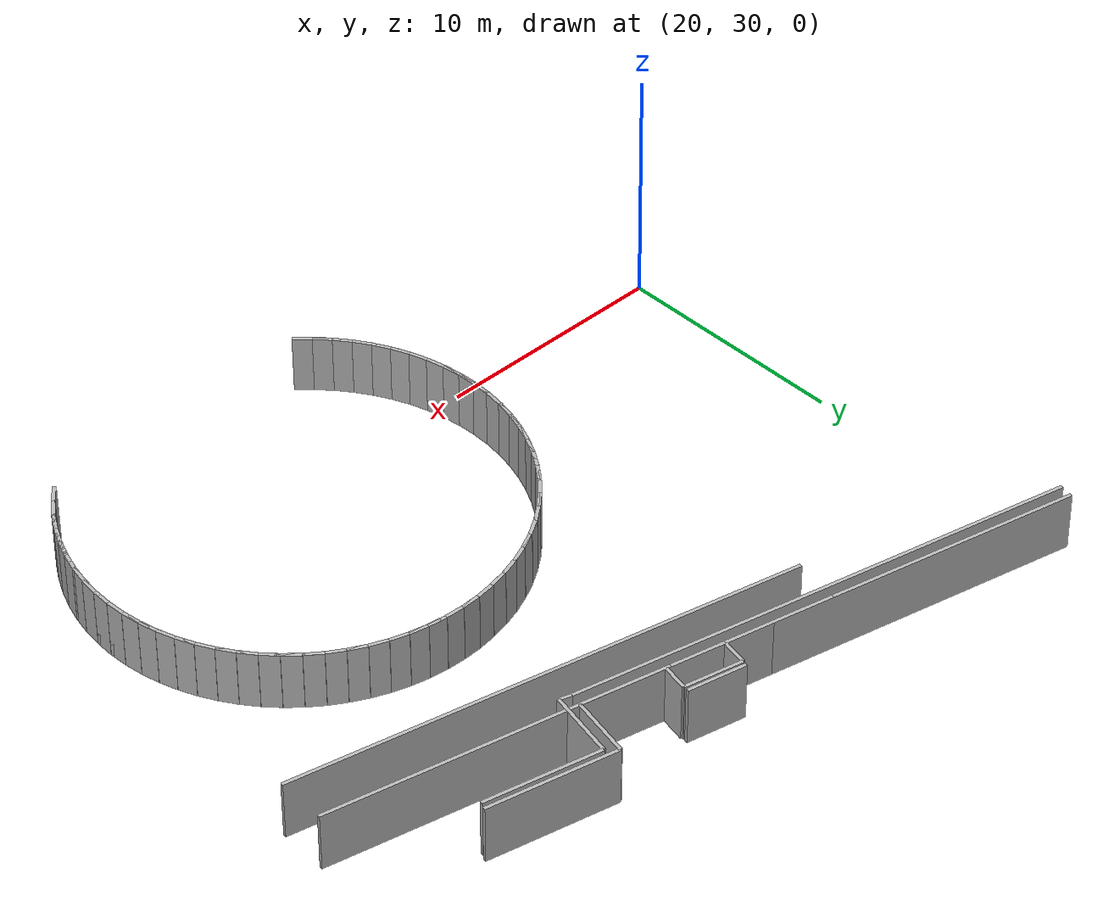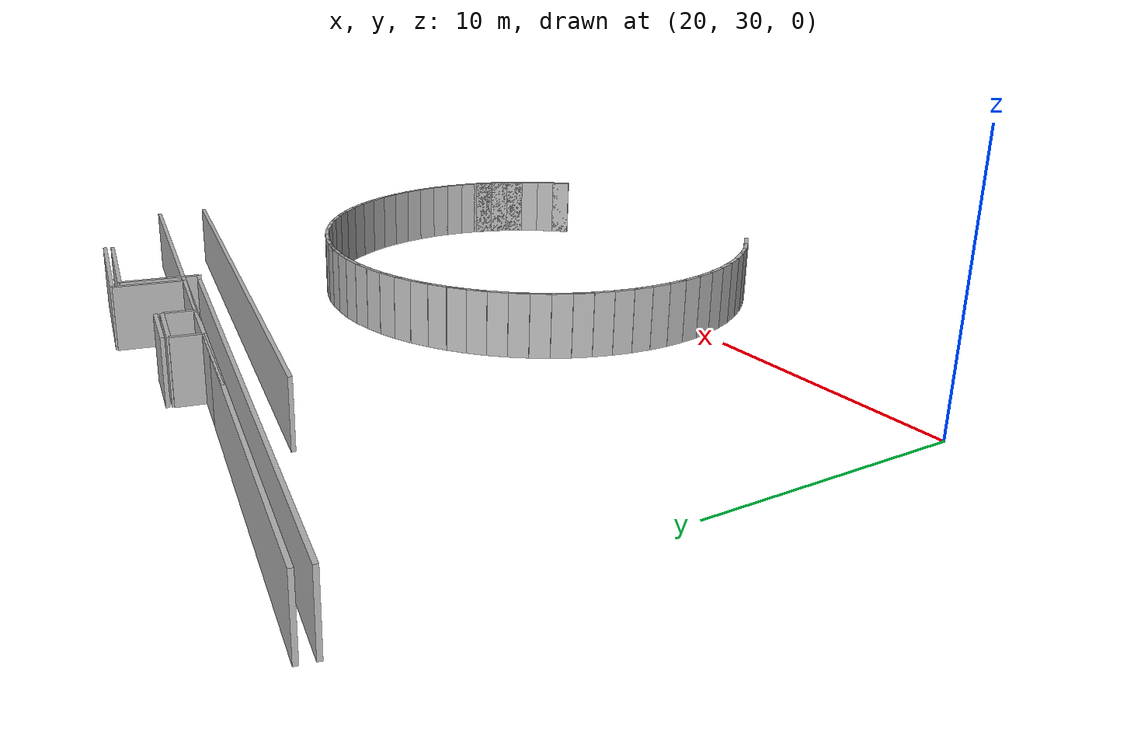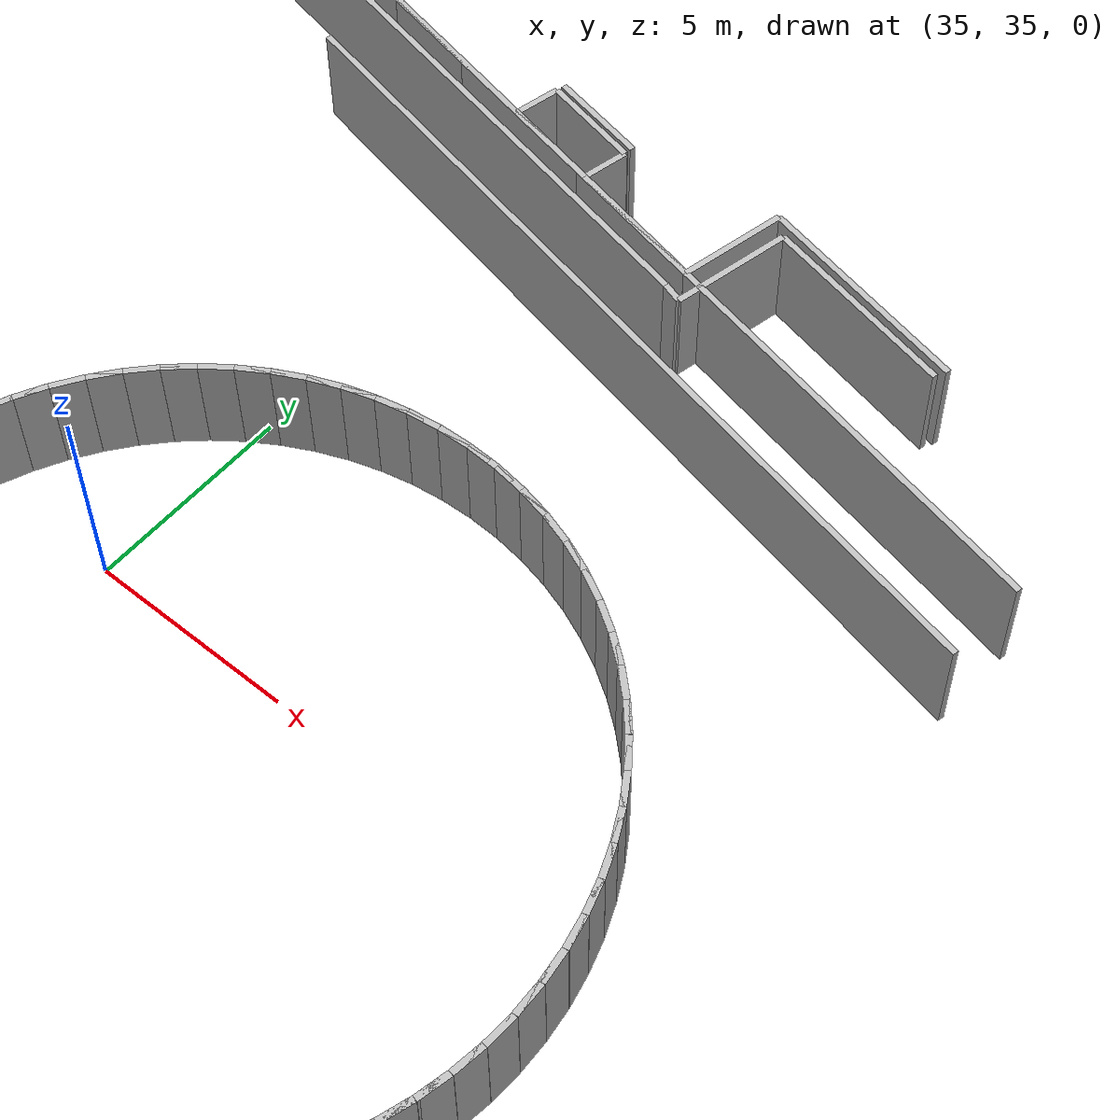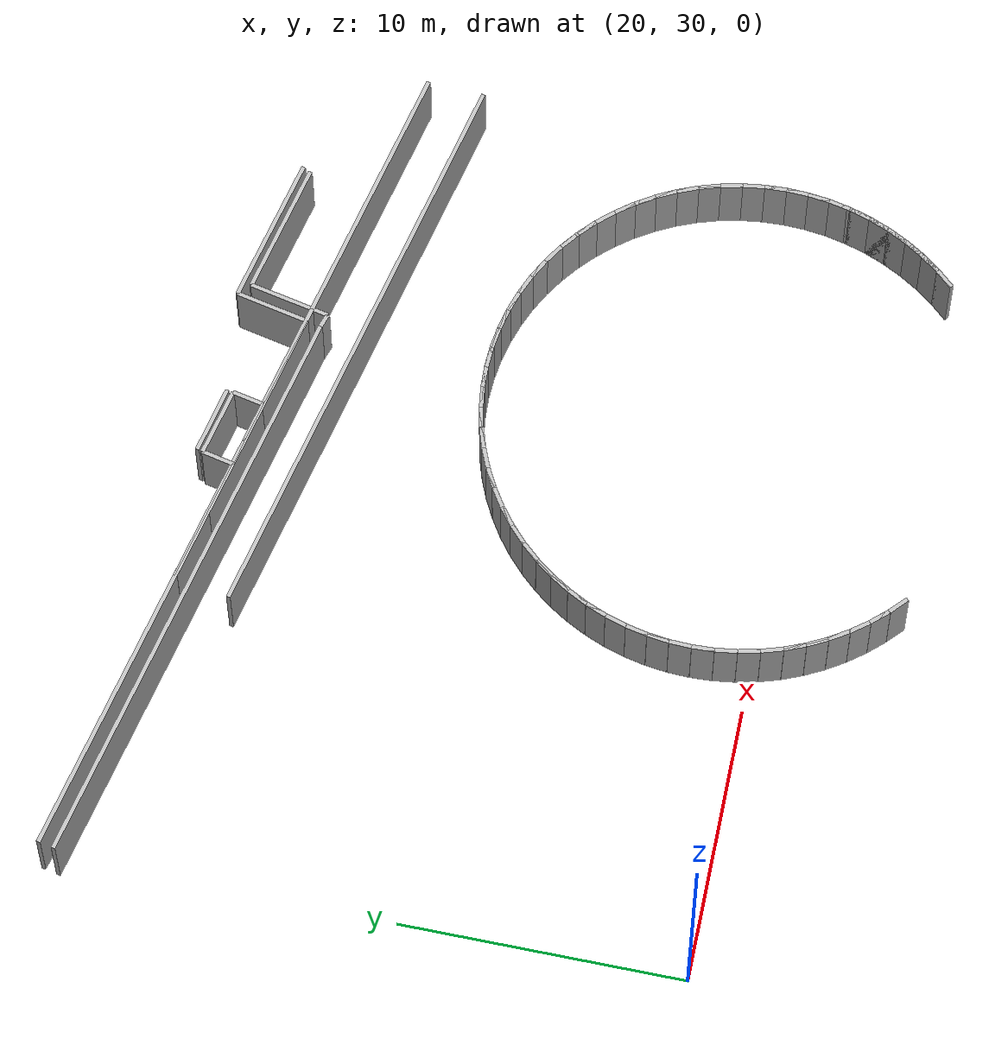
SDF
<sdf version="1.6">
 <model name="sps_2304">
  <static>1</static>
  <allow_auto_disable>0</allow_auto_disable>
  <link name="Wall554">
   <collision name="collision"><geometry><box><size>3.76873 0.15 2.5</size></box></geometry></collision>
   <visual name="visual">
    <geometry><box><size>3.76873 0.15 2.5</size></box></geometry>
    <transparency>0.0</transparency>
   </visual>
   <pose>38.6489 47.998 1.25 0 -0 2.92741</pose>
  </link>
  <link name="Wall557">
   <collision name="collision"><geometry><box><size>21.4794 0.15 2.5</size></box></geometry></collision>
   <visual name="visual">
    <geometry><box><size>21.4794 0.15 2.5</size></box></geometry>
    <transparency>0.0</transparency>
   </visual>
   <pose>40.1071 45.6379 1.25 0 0 -0.213752</pose>
  </link>
  <link name="Wall848">
   <collision name="collision"><geometry><box><size>21.4006 0.15 2.5</size></box></geometry></collision>
   <visual name="visual">
    <geometry><box><size>21.4006 0.15 2.5</size></box></geometry>
    <transparency>0.0</transparency>
   </visual>
   <pose>29.9182 49.3349 1.25 0 0 -0.214228</pose>
  </link>
  <link name="Wall851">
   <collision name="collision"><geometry><box><size>9.96599 0.15 2.5</size></box></geometry></collision>
   <visual name="visual">
    <geometry><box><size>9.96599 0.15 2.5</size></box></geometry>
    <transparency>0.0</transparency>
   </visual>
   <pose>45.8498 46.4379 1.25 0 0 -0.213747</pose>
  </link>
  <link name="Wall1164">
   <collision name="collision"><geometry><box><size>0.502882 0.15 2.5</size></box></geometry></collision>
   <visual name="visual">
    <geometry><box><size>0.502882 0.15 2.5</size></box></geometry>
    <transparency>0.0</transparency>
   </visual>
   <pose>40.613 46.9823 1.25 0 -0 2.82706</pose>
  </link>
  <link name="Wall1165">
   <collision name="collision"><geometry><box><size>2.95052 0.15 2.5</size></box></geometry></collision>
   <visual name="visual">
    <geometry><box><size>2.95052 0.15 2.5</size></box></geometry>
    <transparency>0.0</transparency>
   </visual>
   <pose>41.1655 48.3461 1.25 0 0 -1.78485</pose>
  </link>
  <link name="Wall1166">
   <collision name="collision"><geometry><box><size>5.50803 0.15 2.5</size></box></geometry></collision>
   <visual name="visual">
    <geometry><box><size>5.50803 0.15 2.5</size></box></geometry>
    <transparency>0.0</transparency>
   </visual>
   <pose>43.745 49.601 1.25 0 -0 2.92728</pose>
  </link>
  <link name="Wall1455">
   <collision name="collision"><geometry><box><size>11.205 0.15 2.5</size></box></geometry></collision>
   <visual name="visual">
    <geometry><box><size>11.205 0.15 2.5</size></box></geometry>
    <transparency>0.0</transparency>
   </visual>
   <pose>35.5052 48.6834 1.25 0 0 -0.213762</pose>
  </link>
  <link name="Wall1771">
   <collision name="collision"><geometry><box><size>4.9279 0.15 2.5</size></box></geometry></collision>
   <visual name="visual">
    <geometry><box><size>4.9279 0.15 2.5</size></box></geometry>
    <transparency>0.0</transparency>
   </visual>
   <pose>43.8863 49.2633 1.25 0 -0 2.92713</pose>
  </link>
  <link name="Wall2399">
   <collision name="collision"><geometry><box><size>2.6499 0.15 2.5</size></box></geometry></collision>
   <visual name="visual">
    <geometry><box><size>2.6499 0.15 2.5</size></box></geometry>
    <transparency>0.0</transparency>
   </visual>
   <pose>40.7721 48.8921 1.25 0 0 -1.78519</pose>
  </link>
  <link name="Wall2913">
   <collision name="collision"><geometry><box><size>2.6499 0.15 2.5</size></box></geometry></collision>
   <visual name="visual">
    <geometry><box><size>2.6499 0.15 2.5</size></box></geometry>
    <transparency>0.0</transparency>
   </visual>
   <pose>40.7721 48.8921 1.25 0 0 -1.78519</pose>
  </link>
  <link name="Wall2914">
   <collision name="collision"><geometry><box><size>21.4 0.15 2.5</size></box></geometry></collision>
   <visual name="visual">
    <geometry><box><size>21.4 0.15 2.5</size></box></geometry>
    <transparency>0.0</transparency>
   </visual>
   <pose>30.0348 49.8721 1.25 0 -0 2.92738</pose>
  </link>
  <link name="Wall7907">
   <collision name="collision"><geometry><box><size>21.4794 0.15 2.5</size></box></geometry></collision>
   <visual name="visual">
    <geometry><box><size>21.4794 0.15 2.5</size></box></geometry>
    <transparency>0.0</transparency>
   </visual>
   <pose>40.1071 45.6379 1.25 0 0 -0.213752</pose>
  </link>
  <link name="Wall11289">
   <collision name="collision"><geometry><box><size>0.785219 0.15 2.5</size></box></geometry></collision>
   <visual name="visual">
    <geometry><box><size>0.785219 0.15 2.5</size></box></geometry>
    <transparency>0.0</transparency>
   </visual>
   <pose>45.458 39.1866 1.25 0 0 -0.654819</pose>
  </link>
  <link name="Wall11290">
   <collision name="collision"><geometry><box><size>0.785187 0.15 2.5</size></box></geometry></collision>
   <visual name="visual">
    <geometry><box><size>0.785187 0.15 2.5</size></box></geometry>
    <transparency>0.0</transparency>
   </visual>
   <pose>46.0588 38.6822 1.25 0 0 -0.741962</pose>
  </link>
  <link name="Wall11291">
   <collision name="collision"><geometry><box><size>0.785075 0.15 2.5</size></box></geometry></collision>
   <visual name="visual">
    <geometry><box><size>0.785075 0.15 2.5</size></box></geometry>
    <transparency>0.0</transparency>
   </visual>
   <pose>46.6133 38.1274 1.25 0 0 -0.829336</pose>
  </link>
  <link name="Wall11292">
   <collision name="collision"><geometry><box><size>0.785141 0.15 2.5</size></box></geometry></collision>
   <visual name="visual">
    <geometry><box><size>0.785141 0.15 2.5</size></box></geometry>
    <transparency>0.0</transparency>
   </visual>
   <pose>47.1174 37.5264 1.25 0 0 -0.916489</pose>
  </link>
  <link name="Wall11293">
   <collision name="collision"><geometry><box><size>0.785282 0.15 2.5</size></box></geometry></collision>
   <visual name="visual">
    <geometry><box><size>0.785282 0.15 2.5</size></box></geometry>
    <transparency>0.0</transparency>
   </visual>
   <pose>47.5672 36.8837 1.25 0 0 -1.00383</pose>
  </link>
  <link name="Wall11294">
   <collision name="collision"><geometry><box><size>0.78499 0.15 2.5</size></box></geometry></collision>
   <visual name="visual">
    <geometry><box><size>0.78499 0.15 2.5</size></box></geometry>
    <transparency>0.0</transparency>
   </visual>
   <pose>47.9592 36.2043 1.25 0 0 -1.09115</pose>
  </link>
  <link name="Wall11295">
   <collision name="collision"><geometry><box><size>0.785295 0.15 2.5</size></box></geometry></collision>
   <visual name="visual">
    <geometry><box><size>0.785295 0.15 2.5</size></box></geometry>
    <transparency>0.0</transparency>
   </visual>
   <pose>48.2905 35.4933 1.25 0 0 -1.17832</pose>
  </link>
  <link name="Wall11296">
   <collision name="collision"><geometry><box><size>0.7851 0.15 2.5</size></box></geometry></collision>
   <visual name="visual">
    <geometry><box><size>0.7851 0.15 2.5</size></box></geometry>
    <transparency>0.0</transparency>
   </visual>
   <pose>48.5586 34.7561 1.25 0 0 -1.26569</pose>
  </link>
  <link name="Wall11297">
   <collision name="collision"><geometry><box><size>0.785181 0.15 2.5</size></box></geometry></collision>
   <visual name="visual">
    <geometry><box><size>0.785181 0.15 2.5</size></box></geometry>
    <transparency>0.0</transparency>
   </visual>
   <pose>48.7614 33.9984 1.25 0 0 -1.35282</pose>
  </link>
  <link name="Wall11298">
   <collision name="collision"><geometry><box><size>0.785058 0.15 2.5</size></box></geometry></collision>
   <visual name="visual">
    <geometry><box><size>0.785058 0.15 2.5</size></box></geometry>
    <transparency>0.0</transparency>
   </visual>
   <pose>48.8974 33.2259 1.25 0 0 -1.44028</pose>
  </link>
  <link name="Wall11299">
   <collision name="collision"><geometry><box><size>0.785343 0.15 2.5</size></box></geometry></collision>
   <visual name="visual">
    <geometry><box><size>0.785343 0.15 2.5</size></box></geometry>
    <transparency>0.0</transparency>
   </visual>
   <pose>48.9654 32.4444 1.25 0 0 -1.52749</pose>
  </link>
  <link name="Wall11300">
   <collision name="collision"><geometry><box><size>0.785115 0.15 2.5</size></box></geometry></collision>
   <visual name="visual">
    <geometry><box><size>0.785115 0.15 2.5</size></box></geometry>
    <transparency>0.0</transparency>
   </visual>
   <pose>48.9653 31.6599 1.25 0 0 -1.61458</pose>
  </link>
  <link name="Wall11301">
   <collision name="collision"><geometry><box><size>0.785207 0.15 2.5</size></box></geometry></collision>
   <visual name="visual">
    <geometry><box><size>0.785207 0.15 2.5</size></box></geometry>
    <transparency>0.0</transparency>
   </visual>
   <pose>48.8967 30.8785 1.25 0 0 -1.70215</pose>
  </link>
  <link name="Wall11302">
   <collision name="collision"><geometry><box><size>0.784983 0.15 2.5</size></box></geometry></collision>
   <visual name="visual">
    <geometry><box><size>0.784983 0.15 2.5</size></box></geometry>
    <transparency>0.0</transparency>
   </visual>
   <pose>48.7602 30.1061 1.25 0 0 -1.78907</pose>
  </link>
  <link name="Wall11303">
   <collision name="collision"><geometry><box><size>0.785265 0.15 2.5</size></box></geometry></collision>
   <visual name="visual">
    <geometry><box><size>0.785265 0.15 2.5</size></box></geometry>
    <transparency>0.0</transparency>
   </visual>
   <pose>48.5571 29.3485 1.25 0 0 -1.87657</pose>
  </link>
  <link name="Wall11304">
   <collision name="collision"><geometry><box><size>0.784993 0.15 2.5</size></box></geometry></collision>
   <visual name="visual">
    <geometry><box><size>0.784993 0.15 2.5</size></box></geometry>
    <transparency>0.0</transparency>
   </visual>
   <pose>48.2886 28.6115 1.25 0 0 -1.96376</pose>
  </link>
  <link name="Wall11305">
   <collision name="collision"><geometry><box><size>0.785243 0.15 2.5</size></box></geometry></collision>
   <visual name="visual">
    <geometry><box><size>0.785243 0.15 2.5</size></box></geometry>
    <transparency>0.0</transparency>
   </visual>
   <pose>47.9569 27.9007 1.25 0 0 -2.05106</pose>
  </link>
  <link name="Wall11306">
   <collision name="collision"><geometry><box><size>0.785185 0.15 2.5</size></box></geometry></collision>
   <visual name="visual">
    <geometry><box><size>0.785185 0.15 2.5</size></box></geometry>
    <transparency>0.0</transparency>
   </visual>
   <pose>47.5644 27.2215 1.25 0 0 -2.13857</pose>
  </link>
  <link name="Wall11307">
   <collision name="collision"><geometry><box><size>0.78507 0.15 2.5</size></box></geometry></collision>
   <visual name="visual">
    <geometry><box><size>0.78507 0.15 2.5</size></box></geometry>
    <transparency>0.0</transparency>
   </visual>
   <pose>47.1142 26.5791 1.25 0 0 -2.22537</pose>
  </link>
  <link name="Wall11308">
   <collision name="collision"><geometry><box><size>0.785228 0.15 2.5</size></box></geometry></collision>
   <visual name="visual">
    <geometry><box><size>0.785228 0.15 2.5</size></box></geometry>
    <transparency>0.0</transparency>
   </visual>
   <pose>46.6099 25.9783 1.25 0 0 -2.31282</pose>
  </link>
  <link name="Wall11326">
   <collision name="collision"><geometry><box><size>0.785217 0.15 2.5</size></box></geometry></collision>
   <visual name="visual">
    <geometry><box><size>0.785217 0.15 2.5</size></box></geometry>
    <transparency>0.0</transparency>
   </visual>
   <pose>33.906 25.4273 1.25 0 -0 2.39924</pose>
  </link>
  <link name="Wall11327">
   <collision name="collision"><geometry><box><size>0.785075 0.15 2.5</size></box></geometry></collision>
   <visual name="visual">
    <geometry><box><size>0.785075 0.15 2.5</size></box></geometry>
    <transparency>0.0</transparency>
   </visual>
   <pose>33.3516 25.9822 1.25 0 -0 2.31226</pose>
  </link>
  <link name="Wall11328">
   <collision name="collision"><geometry><box><size>0.785215 0.15 2.5</size></box></geometry></collision>
   <visual name="visual">
    <geometry><box><size>0.785215 0.15 2.5</size></box></geometry>
    <transparency>0.0</transparency>
   </visual>
   <pose>32.8475 26.5832 1.25 0 -0 2.22523</pose>
  </link>
  <link name="Wall11329">
   <collision name="collision"><geometry><box><size>0.785217 0.15 2.5</size></box></geometry></collision>
   <visual name="visual">
    <geometry><box><size>0.785217 0.15 2.5</size></box></geometry>
    <transparency>0.0</transparency>
   </visual>
   <pose>32.3977 27.2259 1.25 0 -0 2.13763</pose>
  </link>
  <link name="Wall11330">
   <collision name="collision"><geometry><box><size>0.785046 0.15 2.5</size></box></geometry></collision>
   <visual name="visual">
    <geometry><box><size>0.785046 0.15 2.5</size></box></geometry>
    <transparency>0.0</transparency>
   </visual>
   <pose>32.0057 27.9053 1.25 0 -0 2.05058</pose>
  </link>
  <link name="Wall11331">
   <collision name="collision"><geometry><box><size>0.785248 0.15 2.5</size></box></geometry></collision>
   <visual name="visual">
    <geometry><box><size>0.785248 0.15 2.5</size></box></geometry>
    <transparency>0.0</transparency>
   </visual>
   <pose>31.6744 28.6163 1.25 0 -0 1.96312</pose>
  </link>
  <link name="Wall11332">
   <collision name="collision"><geometry><box><size>0.785082 0.15 2.5</size></box></geometry></collision>
   <visual name="visual">
    <geometry><box><size>0.785082 0.15 2.5</size></box></geometry>
    <transparency>0.0</transparency>
   </visual>
   <pose>31.4064 29.3535 1.25 0 -0 1.87583</pose>
  </link>
  <link name="Wall11333">
   <collision name="collision"><geometry><box><size>0.785181 0.15 2.5</size></box></geometry></collision>
   <visual name="visual">
    <geometry><box><size>0.785181 0.15 2.5</size></box></geometry>
    <transparency>0.0</transparency>
   </visual>
   <pose>31.2036 30.1112 1.25 0 -0 1.78877</pose>
  </link>
  <link name="Wall11334">
   <collision name="collision"><geometry><box><size>0.785066 0.15 2.5</size></box></geometry></collision>
   <visual name="visual">
    <geometry><box><size>0.785066 0.15 2.5</size></box></geometry>
    <transparency>0.0</transparency>
   </visual>
   <pose>31.0676 30.8837 1.25 0 -0 1.70139</pose>
  </link>
  <link name="Wall11335">
   <collision name="collision"><geometry><box><size>0.785099 0.15 2.5</size></box></geometry></collision>
   <visual name="visual">
    <geometry><box><size>0.785099 0.15 2.5</size></box></geometry>
    <transparency>0.0</transparency>
   </visual>
   <pose>30.9994 31.6651 1.25 0 -0 1.61411</pose>
  </link>
  <link name="Wall11336">
   <collision name="collision"><geometry><box><size>0.785362 0.15 2.5</size></box></geometry></collision>
   <visual name="visual">
    <geometry><box><size>0.785362 0.15 2.5</size></box></geometry>
    <transparency>0.0</transparency>
   </visual>
   <pose>30.9997 32.4496 1.25 0 -0 1.52695</pose>
  </link>
  <link name="Wall11337">
   <collision name="collision"><geometry><box><size>0.784957 0.15 2.5</size></box></geometry></collision>
   <visual name="visual">
    <geometry><box><size>0.784957 0.15 2.5</size></box></geometry>
    <transparency>0.0</transparency>
   </visual>
   <pose>31.0683 33.231 1.25 0 -0 1.43948</pose>
  </link>
  <link name="Wall11338">
   <collision name="collision"><geometry><box><size>0.785221 0.15 2.5</size></box></geometry></collision>
   <visual name="visual">
    <geometry><box><size>0.785221 0.15 2.5</size></box></geometry>
    <transparency>0.0</transparency>
   </visual>
   <pose>31.2046 34.0034 1.25 0 -0 1.35259</pose>
  </link>
  <link name="Wall11339">
   <collision name="collision"><geometry><box><size>0.785284 0.15 2.5</size></box></geometry></collision>
   <visual name="visual">
    <geometry><box><size>0.785284 0.15 2.5</size></box></geometry>
    <transparency>0.0</transparency>
   </visual>
   <pose>31.4079 34.7611 1.25 0 -0 1.26495</pose>
  </link>
  <link name="Wall11340">
   <collision name="collision"><geometry><box><size>0.784993 0.15 2.5</size></box></geometry></collision>
   <visual name="visual">
    <geometry><box><size>0.784993 0.15 2.5</size></box></geometry>
    <transparency>0.0</transparency>
   </visual>
   <pose>31.6764 35.4981 1.25 0 -0 1.17783</pose>
  </link>
  <link name="Wall11341">
   <collision name="collision"><geometry><box><size>0.785243 0.15 2.5</size></box></geometry></collision>
   <visual name="visual">
    <geometry><box><size>0.785243 0.15 2.5</size></box></geometry>
    <transparency>0.0</transparency>
   </visual>
   <pose>32.0081 36.2089 1.25 0 -0 1.09053</pose>
  </link>
  <link name="Wall11342">
   <collision name="collision"><geometry><box><size>0.785053 0.15 2.5</size></box></geometry></collision>
   <visual name="visual">
    <geometry><box><size>0.785053 0.15 2.5</size></box></geometry>
    <transparency>0.0</transparency>
   </visual>
   <pose>32.4005 36.8881 1.25 0 -0 1.00328</pose>
  </link>
  <link name="Wall11343">
   <collision name="collision"><geometry><box><size>0.785219 0.15 2.5</size></box></geometry></collision>
   <visual name="visual">
    <geometry><box><size>0.785219 0.15 2.5</size></box></geometry>
    <transparency>0.0</transparency>
   </visual>
   <pose>32.8506 37.5305 1.25 0 -0 0.915977</pose>
  </link>
  <link name="Wall11344">
   <collision name="collision"><geometry><box><size>0.785187 0.15 2.5</size></box></geometry></collision>
   <visual name="visual">
    <geometry><box><size>0.785187 0.15 2.5</size></box></geometry>
    <transparency>0.0</transparency>
   </visual>
   <pose>33.355 38.1313 1.25 0 -0 0.828835</pose>
  </link>
  <link name="Wall11345">
   <collision name="collision"><geometry><box><size>0.785075 0.15 2.5</size></box></geometry></collision>
   <visual name="visual">
    <geometry><box><size>0.785075 0.15 2.5</size></box></geometry>
    <transparency>0.0</transparency>
   </visual>
   <pose>33.9098 38.6858 1.25 0 -0 0.74146</pose>
  </link>
  <link name="Wall11346">
   <collision name="collision"><geometry><box><size>0.785104 0.15 2.5</size></box></geometry></collision>
   <visual name="visual">
    <geometry><box><size>0.785104 0.15 2.5</size></box></geometry>
    <transparency>0.0</transparency>
   </visual>
   <pose>34.5107 39.1898 1.25 0 -0 0.654245</pose>
  </link>
  <link name="Wall11347">
   <collision name="collision"><geometry><box><size>0.785217 0.15 2.5</size></box></geometry></collision>
   <visual name="visual">
    <geometry><box><size>0.785217 0.15 2.5</size></box></geometry>
    <transparency>0.0</transparency>
   </visual>
   <pose>35.1534 39.6395 1.25 0 -0 0.566831</pose>
  </link>
  <link name="Wall11348">
   <collision name="collision"><geometry><box><size>0.785237 0.15 2.5</size></box></geometry></collision>
   <visual name="visual">
    <geometry><box><size>0.785237 0.15 2.5</size></box></geometry>
    <transparency>0.0</transparency>
   </visual>
   <pose>35.8329 40.0315 1.25 0 -0 0.479743</pose>
  </link>
  <link name="Wall11349">
   <collision name="collision"><geometry><box><size>0.785125 0.15 2.5</size></box></geometry></collision>
   <visual name="visual">
    <geometry><box><size>0.785125 0.15 2.5</size></box></geometry>
    <transparency>0.0</transparency>
   </visual>
   <pose>36.5439 40.3629 1.25 0 -0 0.392561</pose>
  </link>
  <link name="Wall11350">
   <collision name="collision"><geometry><box><size>0.7851 0.15 2.5</size></box></geometry></collision>
   <visual name="visual">
    <geometry><box><size>0.7851 0.15 2.5</size></box></geometry>
    <transparency>0.0</transparency>
   </visual>
   <pose>37.2811 40.631 1.25 0 -0 0.305106</pose>
  </link>
  <link name="Wall11351">
   <collision name="collision"><geometry><box><size>0.785129 0.15 2.5</size></box></geometry></collision>
   <visual name="visual">
    <geometry><box><size>0.785129 0.15 2.5</size></box></geometry>
    <transparency>0.0</transparency>
   </visual>
   <pose>38.0388 40.8337 1.25 0 -0 0.217674</pose>
  </link>
  <link name="Wall11352">
   <collision name="collision"><geometry><box><size>0.785272 0.15 2.5</size></box></geometry></collision>
   <visual name="visual">
    <geometry><box><size>0.785272 0.15 2.5</size></box></geometry>
    <transparency>0.0</transparency>
   </visual>
   <pose>38.8114 40.9697 1.25 0 -0 0.130795</pose>
  </link>
  <link name="Wall11353">
   <collision name="collision"><geometry><box><size>0.78516 0.15 2.5</size></box></geometry></collision>
   <visual name="visual">
    <geometry><box><size>0.78516 0.15 2.5</size></box></geometry>
    <transparency>0.0</transparency>
   </visual>
   <pose>39.5929 41.0379 1.25 0 -0 0.0433125</pose>
  </link>
  <link name="Wall11354">
   <collision name="collision"><geometry><box><size>0.785126 0.15 2.5</size></box></geometry></collision>
   <visual name="visual">
    <geometry><box><size>0.785126 0.15 2.5</size></box></geometry>
    <transparency>0.0</transparency>
   </visual>
   <pose>40.3773 41.0376 1.25 0 0 -0.0440925</pose>
  </link>
  <link name="Wall11355">
   <collision name="collision"><geometry><box><size>0.785175 0.15 2.5</size></box></geometry></collision>
   <visual name="visual">
    <geometry><box><size>0.785175 0.15 2.5</size></box></geometry>
    <transparency>0.0</transparency>
   </visual>
   <pose>41.1587 40.969 1.25 0 0 -0.131046</pose>
  </link>
  <link name="Wall11356">
   <collision name="collision"><geometry><box><size>0.785022 0.15 2.5</size></box></geometry></collision>
   <visual name="visual">
    <geometry><box><size>0.785022 0.15 2.5</size></box></geometry>
    <transparency>0.0</transparency>
   </visual>
   <pose>41.9311 40.8326 1.25 0 0 -0.2185</pose>
  </link>
  <link name="Wall11357">
   <collision name="collision"><geometry><box><size>0.785265 0.15 2.5</size></box></geometry></collision>
   <visual name="visual">
    <geometry><box><size>0.785265 0.15 2.5</size></box></geometry>
    <transparency>0.0</transparency>
   </visual>
   <pose>42.6887 40.6293 1.25 0 0 -0.305774</pose>
  </link>
  <link name="Wall11358">
   <collision name="collision"><geometry><box><size>0.785017 0.15 2.5</size></box></geometry></collision>
   <visual name="visual">
    <geometry><box><size>0.785017 0.15 2.5</size></box></geometry>
    <transparency>0.0</transparency>
   </visual>
   <pose>43.4257 40.3608 1.25 0 0 -0.393039</pose>
  </link>
  <link name="Wall11359">
   <collision name="collision"><geometry><box><size>0.785243 0.15 2.5</size></box></geometry></collision>
   <visual name="visual">
    <geometry><box><size>0.785243 0.15 2.5</size></box></geometry>
    <transparency>0.0</transparency>
   </visual>
   <pose>44.1364 40.0291 1.25 0 0 -0.480264</pose>
  </link>
  <link name="Wall13109">
   <collision name="collision"><geometry><box><size>5.50803 0.15 2.5</size></box></geometry></collision>
   <visual name="visual">
    <geometry><box><size>5.50803 0.15 2.5</size></box></geometry>
    <transparency>0.0</transparency>
   </visual>
   <pose>43.745 49.601 1.25 0 -0 2.92728</pose>
  </link>
  <link name="Wall24100">
   <collision name="collision"><geometry><box><size>2.50015 0.15 2.5</size></box></geometry></collision>
   <visual name="visual">
    <geometry><box><size>2.50015 0.15 2.5</size></box></geometry>
    <transparency>0.0</transparency>
   </visual>
   <pose>35.7822 48.6233 1.25 0 0 -0.21377</pose>
  </link>
  <link name="Wall24101">
   <collision name="collision"><geometry><box><size>1.15009 0.15 2.5</size></box></geometry></collision>
   <visual name="visual">
    <geometry><box><size>1.15009 0.15 2.5</size></box></geometry>
    <transparency>0.0</transparency>
   </visual>
   <pose>37.1258 48.9201 1.25 0 -0 1.35722</pose>
  </link>
  <link name="Wall24102">
   <collision name="collision"><geometry><box><size>2.50009 0.15 2.5</size></box></geometry></collision>
   <visual name="visual">
    <geometry><box><size>2.50009 0.15 2.5</size></box></geometry>
    <transparency>0.0</transparency>
   </visual>
   <pose>36.0261 49.7473 1.25 0 -0 2.92782</pose>
  </link>
  <link name="Wall24103">
   <collision name="collision"><geometry><box><size>1.15011 0.15 2.5</size></box></geometry></collision>
   <visual name="visual">
    <geometry><box><size>1.15011 0.15 2.5</size></box></geometry>
    <transparency>0.0</transparency>
   </visual>
   <pose>34.6825 49.4505 1.25 0 0 -1.78443</pose>
  </link>
  <link name="Wall24104">
   <collision name="collision"><geometry><box><size>2.50012 0.15 2.5</size></box></geometry></collision>
   <visual name="visual">
    <geometry><box><size>2.50012 0.15 2.5</size></box></geometry>
    <transparency>0.0</transparency>
   </visual>
   <pose>36.0666 49.9574 1.25 0 0 -0.207306</pose>
  </link>
  <link name="Wall29051">
   <collision name="collision"><geometry><box><size>0.785185 0.15 2.5</size></box></geometry></collision>
   <visual name="visual">
    <geometry><box><size>0.785185 0.15 2.5</size></box></geometry>
    <transparency>0.0</transparency>
   </visual>
   <pose>47.5644 27.2215 1.25 0 -0 1.00302</pose>
  </link>
  <link name="Wall29052">
   <collision name="collision"><geometry><box><size>0.785243 0.15 2.5</size></box></geometry></collision>
   <visual name="visual">
    <geometry><box><size>0.785243 0.15 2.5</size></box></geometry>
    <transparency>0.0</transparency>
   </visual>
   <pose>47.9569 27.9007 1.25 0 -0 1.09053</pose>
  </link>
  <link name="Wall29053">
   <collision name="collision"><geometry><box><size>0.784993 0.15 2.5</size></box></geometry></collision>
   <visual name="visual">
    <geometry><box><size>0.784993 0.15 2.5</size></box></geometry>
    <transparency>0.0</transparency>
   </visual>
   <pose>48.2886 28.6115 1.25 0 -0 1.17783</pose>
  </link>
  <link name="Wall29054">
   <collision name="collision"><geometry><box><size>0.785265 0.15 2.5</size></box></geometry></collision>
   <visual name="visual">
    <geometry><box><size>0.785265 0.15 2.5</size></box></geometry>
    <transparency>0.0</transparency>
   </visual>
   <pose>48.5571 29.3485 1.25 0 -0 1.26502</pose>
  </link>
  <link name="Wall29055">
   <collision name="collision"><geometry><box><size>0.785221 0.15 2.5</size></box></geometry></collision>
   <visual name="visual">
    <geometry><box><size>0.785221 0.15 2.5</size></box></geometry>
    <transparency>0.0</transparency>
   </visual>
   <pose>48.7602 30.1062 1.25 0 -0 1.35259</pose>
  </link>
  <link name="Wall29056">
   <collision name="collision"><geometry><box><size>0.785146 0.15 2.5</size></box></geometry></collision>
   <visual name="visual">
    <geometry><box><size>0.785146 0.15 2.5</size></box></geometry>
    <transparency>0.0</transparency>
   </visual>
   <pose>48.8967 30.8787 1.25 0 -0 1.43943</pose>
  </link>
  <link name="Wall29057">
   <collision name="collision"><geometry><box><size>0.785176 0.15 2.5</size></box></geometry></collision>
   <visual name="visual">
    <geometry><box><size>0.785176 0.15 2.5</size></box></geometry>
    <transparency>0.0</transparency>
   </visual>
   <pose>48.9653 31.6601 1.25 0 -0 1.52702</pose>
  </link>
  <link name="Wall29058">
   <collision name="collision"><geometry><box><size>0.785282 0.15 2.5</size></box></geometry></collision>
   <visual name="visual">
    <geometry><box><size>0.785282 0.15 2.5</size></box></geometry>
    <transparency>0.0</transparency>
   </visual>
   <pose>48.9654 32.4446 1.25 0 -0 1.6141</pose>
  </link>
  <link name="Wall29059">
   <collision name="collision"><geometry><box><size>0.785119 0.15 2.5</size></box></geometry></collision>
   <visual name="visual">
    <geometry><box><size>0.785119 0.15 2.5</size></box></geometry>
    <transparency>0.0</transparency>
   </visual>
   <pose>48.8974 33.2261 1.25 0 -0 1.7013</pose>
  </link>
  <link name="Wall29060">
   <collision name="collision"><geometry><box><size>0.785181 0.15 2.5</size></box></geometry></collision>
   <visual name="visual">
    <geometry><box><size>0.785181 0.15 2.5</size></box></geometry>
    <transparency>0.0</transparency>
   </visual>
   <pose>48.7614 33.9986 1.25 0 -0 1.78877</pose>
  </link>
  <link name="Wall29061">
   <collision name="collision"><geometry><box><size>0.785217 0.15 2.5</size></box></geometry></collision>
   <visual name="visual">
    <geometry><box><size>0.785217 0.15 2.5</size></box></geometry>
    <transparency>0.0</transparency>
   </visual>
   <pose>48.5586 34.7564 1.25 0 -0 1.87586</pose>
  </link>
  <link name="Wall29062">
   <collision name="collision"><geometry><box><size>0.785125 0.15 2.5</size></box></geometry></collision>
   <visual name="visual">
    <geometry><box><size>0.785125 0.15 2.5</size></box></geometry>
    <transparency>0.0</transparency>
   </visual>
   <pose>48.2905 35.4936 1.25 0 -0 1.96336</pose>
  </link>
  <link name="Wall29063">
   <collision name="collision"><geometry><box><size>0.785237 0.15 2.5</size></box></geometry></collision>
   <visual name="visual">
    <geometry><box><size>0.785237 0.15 2.5</size></box></geometry>
    <transparency>0.0</transparency>
   </visual>
   <pose>47.9591 36.2046 1.25 0 -0 2.05054</pose>
  </link>
  <link name="Wall29064">
   <collision name="collision"><geometry><box><size>0.78503 0.15 2.5</size></box></geometry></collision>
   <visual name="visual">
    <geometry><box><size>0.78503 0.15 2.5</size></box></geometry>
    <transparency>0.0</transparency>
   </visual>
   <pose>47.5671 36.884 1.25 0 -0 2.13769</pose>
  </link>
  <link name="Wall29065">
   <collision name="collision"><geometry><box><size>0.785286 0.15 2.5</size></box></geometry></collision>
   <visual name="visual">
    <geometry><box><size>0.785286 0.15 2.5</size></box></geometry>
    <transparency>0.0</transparency>
   </visual>
   <pose>47.1174 37.5267 1.25 0 -0 2.22496</pose>
  </link>
  <link name="Wall29066">
   <collision name="collision"><geometry><box><size>0.785243 0.15 2.5</size></box></geometry></collision>
   <visual name="visual">
    <geometry><box><size>0.785243 0.15 2.5</size></box></geometry>
    <transparency>0.0</transparency>
   </visual>
   <pose>46.6132 38.1278 1.25 0 -0 2.31238</pose>
  </link>
  <link name="Wall29067">
   <collision name="collision"><geometry><box><size>0.785052 0.15 2.5</size></box></geometry></collision>
   <visual name="visual">
    <geometry><box><size>0.785052 0.15 2.5</size></box></geometry>
    <transparency>0.0</transparency>
   </visual>
   <pose>46.0587 38.6826 1.25 0 -0 2.39947</pose>
  </link>
  <link name="Wall29068">
   <collision name="collision"><geometry><box><size>0.785219 0.15 2.5</size></box></geometry></collision>
   <visual name="visual">
    <geometry><box><size>0.785219 0.15 2.5</size></box></geometry>
    <transparency>0.0</transparency>
   </visual>
   <pose>45.458 39.187 1.25 0 -0 2.48677</pose>
  </link>
  <link name="Wall29069">
   <collision name="collision"><geometry><box><size>0.785208 0.15 2.5</size></box></geometry></collision>
   <visual name="visual">
    <geometry><box><size>0.785208 0.15 2.5</size></box></geometry>
    <transparency>0.0</transparency>
   </visual>
   <pose>44.8155 39.6371 1.25 0 -0 2.5742</pose>
  </link>
  <link name="Wall29070">
   <collision name="collision"><geometry><box><size>0.785243 0.15 2.5</size></box></geometry></collision>
   <visual name="visual">
    <geometry><box><size>0.785243 0.15 2.5</size></box></geometry>
    <transparency>0.0</transparency>
   </visual>
   <pose>44.1363 40.0295 1.25 0 -0 2.66133</pose>
  </link>
  <link name="Wall29071">
   <collision name="collision"><geometry><box><size>0.785219 0.15 2.5</size></box></geometry></collision>
   <visual name="visual">
    <geometry><box><size>0.785219 0.15 2.5</size></box></geometry>
    <transparency>0.0</transparency>
   </visual>
   <pose>43.4253 40.3612 1.25 0 -0 2.74874</pose>
  </link>
  <link name="Wall29072">
   <collision name="collision"><geometry><box><size>0.785033 0.15 2.5</size></box></geometry></collision>
   <visual name="visual">
    <geometry><box><size>0.785033 0.15 2.5</size></box></geometry>
    <transparency>0.0</transparency>
   </visual>
   <pose>42.6883 40.6297 1.25 0 -0 2.83573</pose>
  </link>
  <link name="Wall29073">
   <collision name="collision"><geometry><box><size>0.785234 0.15 2.5</size></box></geometry></collision>
   <visual name="visual">
    <geometry><box><size>0.785234 0.15 2.5</size></box></geometry>
    <transparency>0.0</transparency>
   </visual>
   <pose>41.9307 40.8329 1.25 0 -0 2.92331</pose>
  </link>
  <link name="Wall29074">
   <collision name="collision"><geometry><box><size>0.785138 0.15 2.5</size></box></geometry></collision>
   <visual name="visual">
    <geometry><box><size>0.785138 0.15 2.5</size></box></geometry>
    <transparency>0.0</transparency>
   </visual>
   <pose>41.1583 40.9693 1.25 0 -0 3.0103</pose>
  </link>
  <link name="Wall29075">
   <collision name="collision"><geometry><box><size>0.785176 0.15 2.5</size></box></geometry></collision>
   <visual name="visual">
    <geometry><box><size>0.785176 0.15 2.5</size></box></geometry>
    <transparency>0.0</transparency>
   </visual>
   <pose>40.3769 41.0379 1.25 0 -0 3.09781</pose>
  </link>
  <link name="Wall29076">
   <collision name="collision"><geometry><box><size>0.785099 0.15 2.5</size></box></geometry></collision>
   <visual name="visual">
    <geometry><box><size>0.785099 0.15 2.5</size></box></geometry>
    <transparency>0.0</transparency>
   </visual>
   <pose>39.5925 41.0381 1.25 0 0 -3.09828</pose>
  </link>
  <link name="Wall29077">
   <collision name="collision"><geometry><box><size>0.785301 0.15 2.5</size></box></geometry></collision>
   <visual name="visual">
    <geometry><box><size>0.785301 0.15 2.5</size></box></geometry>
    <transparency>0.0</transparency>
   </visual>
   <pose>38.811 40.97 1.25 0 0 -3.01112</pose>
  </link>
  <link name="Wall29078">
   <collision name="collision"><geometry><box><size>0.785181 0.15 2.5</size></box></geometry></collision>
   <visual name="visual">
    <geometry><box><size>0.785181 0.15 2.5</size></box></geometry>
    <transparency>0.0</transparency>
   </visual>
   <pose>38.0384 40.834 1.25 0 0 -2.92362</pose>
  </link>
  <link name="Wall29079">
   <collision name="collision"><geometry><box><size>0.785024 0.15 2.5</size></box></geometry></collision>
   <visual name="visual">
    <geometry><box><size>0.785024 0.15 2.5</size></box></geometry>
    <transparency>0.0</transparency>
   </visual>
   <pose>37.2807 40.6312 1.25 0 0 -2.83654</pose>
  </link>
  <link name="Wall29080">
   <collision name="collision"><geometry><box><size>0.785318 0.15 2.5</size></box></geometry></collision>
   <visual name="visual">
    <geometry><box><size>0.785318 0.15 2.5</size></box></geometry>
    <transparency>0.0</transparency>
   </visual>
   <pose>36.5435 40.3631 1.25 0 0 -2.74905</pose>
  </link>
  <link name="Wall29081">
   <collision name="collision"><geometry><box><size>0.785291 0.15 2.5</size></box></geometry></collision>
   <visual name="visual">
    <geometry><box><size>0.785291 0.15 2.5</size></box></geometry>
    <transparency>0.0</transparency>
   </visual>
   <pose>35.8324 40.0317 1.25 0 0 -2.66189</pose>
  </link>
  <link name="Wall29082">
   <collision name="collision"><geometry><box><size>0.784978 0.15 2.5</size></box></geometry></collision>
   <visual name="visual">
    <geometry><box><size>0.784978 0.15 2.5</size></box></geometry>
    <transparency>0.0</transparency>
   </visual>
   <pose>35.1529 39.6397 1.25 0 0 -2.57466</pose>
  </link>
  <link name="Wall29083">
   <collision name="collision"><geometry><box><size>0.785141 0.15 2.5</size></box></geometry></collision>
   <visual name="visual">
    <geometry><box><size>0.785141 0.15 2.5</size></box></geometry>
    <transparency>0.0</transparency>
   </visual>
   <pose>34.5104 39.19 1.25 0 0 -2.48729</pose>
  </link>
  <link name="Wall29084">
   <collision name="collision"><geometry><box><size>0.785243 0.15 2.5</size></box></geometry></collision>
   <visual name="visual">
    <geometry><box><size>0.785243 0.15 2.5</size></box></geometry>
    <transparency>0.0</transparency>
   </visual>
   <pose>33.9094 38.6859 1.25 0 0 -2.40001</pose>
  </link>
  <link name="Wall29085">
   <collision name="collision"><geometry><box><size>0.785131 0.15 2.5</size></box></geometry></collision>
   <visual name="visual">
    <geometry><box><size>0.785131 0.15 2.5</size></box></geometry>
    <transparency>0.0</transparency>
   </visual>
   <pose>33.3545 38.1314 1.25 0 0 -2.31314</pose>
  </link>
  <link name="Wall29086">
   <collision name="collision"><geometry><box><size>0.785107 0.15 2.5</size></box></geometry></collision>
   <visual name="visual">
    <geometry><box><size>0.785107 0.15 2.5</size></box></geometry>
    <transparency>0.0</transparency>
   </visual>
   <pose>32.8501 37.5307 1.25 0 0 -2.22543</pose>
  </link>
  <link name="Wall29087">
   <collision name="collision"><geometry><box><size>0.785203 0.15 2.5</size></box></geometry></collision>
   <visual name="visual">
    <geometry><box><size>0.785203 0.15 2.5</size></box></geometry>
    <transparency>0.0</transparency>
   </visual>
   <pose>32.4 36.8883 1.25 0 0 -2.13847</pose>
  </link>
  <link name="Wall29088">
   <collision name="collision"><geometry><box><size>0.785321 0.15 2.5</size></box></geometry></collision>
   <visual name="visual">
    <geometry><box><size>0.785321 0.15 2.5</size></box></geometry>
    <transparency>0.0</transparency>
   </visual>
   <pose>32.0076 36.209 1.25 0 0 -2.05075</pose>
  </link>
  <link name="Wall29089">
   <collision name="collision"><geometry><box><size>0.785063 0.15 2.5</size></box></geometry></collision>
   <visual name="visual">
    <geometry><box><size>0.785063 0.15 2.5</size></box></geometry>
    <transparency>0.0</transparency>
   </visual>
   <pose>31.6759 35.4981 1.25 0 0 -1.96398</pose>
  </link>
  <link name="Wall29090">
   <collision name="collision"><geometry><box><size>0.78521 0.15 2.5</size></box></geometry></collision>
   <visual name="visual">
    <geometry><box><size>0.78521 0.15 2.5</size></box></geometry>
    <transparency>0.0</transparency>
   </visual>
   <pose>31.4074 34.7611 1.25 0 0 -1.87635</pose>
  </link>
  <link name="Wall29091">
   <collision name="collision"><geometry><box><size>0.785274 0.15 2.5</size></box></geometry></collision>
   <visual name="visual">
    <geometry><box><size>0.785274 0.15 2.5</size></box></geometry>
    <transparency>0.0</transparency>
   </visual>
   <pose>31.2042 34.0034 1.25 0 0 -1.78931</pose>
  </link>
  <link name="Wall29092">
   <collision name="collision"><geometry><box><size>0.785138 0.15 2.5</size></box></geometry></collision>
   <visual name="visual">
    <geometry><box><size>0.785138 0.15 2.5</size></box></geometry>
    <transparency>0.0</transparency>
   </visual>
   <pose>31.0676 33.2309 1.25 0 0 -1.70208</pose>
  </link>
  <link name="Wall29093">
   <collision name="collision"><geometry><box><size>0.785179 0.15 2.5</size></box></geometry></collision>
   <visual name="visual">
    <geometry><box><size>0.785179 0.15 2.5</size></box></geometry>
    <transparency>0.0</transparency>
   </visual>
   <pose>30.999 32.4495 1.25 0 0 -1.61465</pose>
  </link>
  <link name="Wall29094">
   <collision name="collision"><geometry><box><size>0.785099 0.15 2.5</size></box></geometry></collision>
   <visual name="visual">
    <geometry><box><size>0.785099 0.15 2.5</size></box></geometry>
    <transparency>0.0</transparency>
   </visual>
   <pose>30.9988 31.6651 1.25 0 0 -1.52748</pose>
  </link>
  <link name="Wall29095">
   <collision name="collision"><geometry><box><size>0.785332 0.15 2.5</size></box></geometry></collision>
   <visual name="visual">
    <geometry><box><size>0.785332 0.15 2.5</size></box></geometry>
    <transparency>0.0</transparency>
   </visual>
   <pose>31.067 30.8836 1.25 0 0 -1.44001</pose>
  </link>
  <link name="Wall29096">
   <collision name="collision"><geometry><box><size>0.785142 0.15 2.5</size></box></geometry></collision>
   <visual name="visual">
    <geometry><box><size>0.785142 0.15 2.5</size></box></geometry>
    <transparency>0.0</transparency>
   </visual>
   <pose>31.2031 30.111 1.25 0 0 -1.35305</pose>
  </link>
  <link name="Wall29097">
   <collision name="collision"><geometry><box><size>0.785079 0.15 2.5</size></box></geometry></collision>
   <visual name="visual">
    <geometry><box><size>0.785079 0.15 2.5</size></box></geometry>
    <transparency>0.0</transparency>
   </visual>
   <pose>31.4058 29.3533 1.25 0 0 -1.26552</pose>
  </link>
  <link name="Wall29098">
   <collision name="collision"><geometry><box><size>0.785079 0.15 2.5</size></box></geometry></collision>
   <visual name="visual">
    <geometry><box><size>0.785079 0.15 2.5</size></box></geometry>
    <transparency>0.0</transparency>
   </visual>
   <pose>31.6739 28.6162 1.25 0 0 -1.17838</pose>
  </link>
  <link name="Wall29099">
   <collision name="collision"><geometry><box><size>0.785237 0.15 2.5</size></box></geometry></collision>
   <visual name="visual">
    <geometry><box><size>0.785237 0.15 2.5</size></box></geometry>
    <transparency>0.0</transparency>
   </visual>
   <pose>32.0053 27.9052 1.25 0 0 -1.09105</pose>
  </link>
  <link name="Wall29100">
   <collision name="collision"><geometry><box><size>0.785282 0.15 2.5</size></box></geometry></collision>
   <visual name="visual">
    <geometry><box><size>0.785282 0.15 2.5</size></box></geometry>
    <transparency>0.0</transparency>
   </visual>
   <pose>32.3974 27.2257 1.25 0 0 -1.00383</pose>
  </link>
  <link name="Wall29101">
   <collision name="collision"><geometry><box><size>0.784992 0.15 2.5</size></box></geometry></collision>
   <visual name="visual">
    <geometry><box><size>0.784992 0.15 2.5</size></box></geometry>
    <transparency>0.0</transparency>
   </visual>
   <pose>32.847 26.583 1.25 0 0 -0.916736</pose>
  </link>
  <link name="Wall29102">
   <collision name="collision"><geometry><box><size>0.785198 0.15 2.5</size></box></geometry></collision>
   <visual name="visual">
    <geometry><box><size>0.785198 0.15 2.5</size></box></geometry>
    <transparency>0.0</transparency>
   </visual>
   <pose>33.351 25.982 1.25 0 0 -0.829164</pose>
  </link>
  <link name="Wall29121">
   <collision name="collision"><geometry><box><size>0.785228 0.15 2.5</size></box></geometry></collision>
   <visual name="visual">
    <geometry><box><size>0.785228 0.15 2.5</size></box></geometry>
    <transparency>0.0</transparency>
   </visual>
   <pose>46.6099 25.9783 1.25 0 -0 0.828777</pose>
  </link>
  <link name="Wall29122">
   <collision name="collision"><geometry><box><size>0.78507 0.15 2.5</size></box></geometry></collision>
   <visual name="visual">
    <geometry><box><size>0.78507 0.15 2.5</size></box></geometry>
    <transparency>0.0</transparency>
   </visual>
   <pose>47.1142 26.5791 1.25 0 -0 0.916224</pose>
  </link>
 </model>
</sdf>
